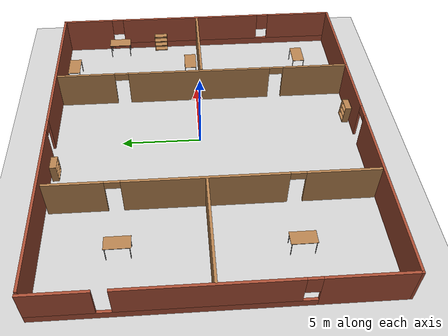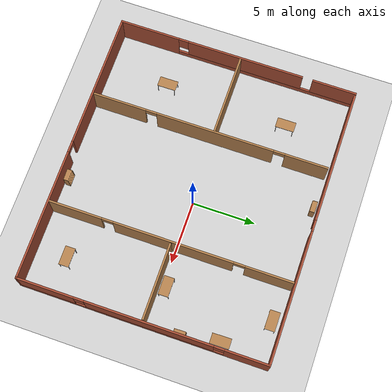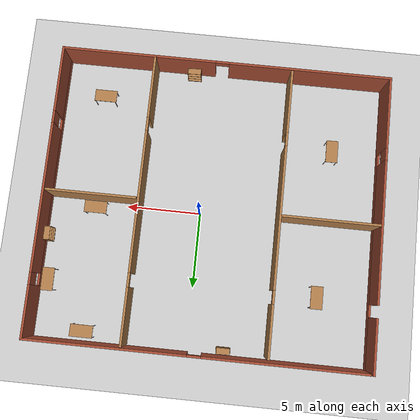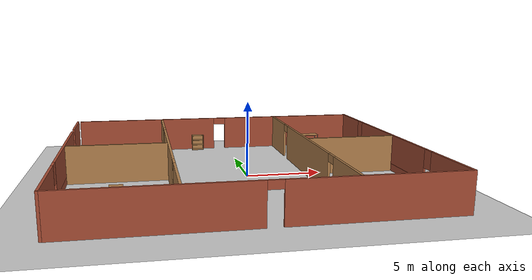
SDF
<sdf version="1.7">
 <world name="default">
  <light name="sun" type="directional">
   <pose>0 0 10 0 -0 0</pose>
   <diffuse>0.8 0.8 0.8 1</diffuse>
   <specular>0.2 0.2 0.2 1</specular>
   <attenuation>
    <range>1000</range>
    <constant>0.9</constant>
    <linear>0.01</linear>
    <quadratic>0.001</quadratic>
   </attenuation>
   <direction>-0.5 0.1 -0.9</direction>
   <spot><inner_angle>0</inner_angle><outer_angle>0</outer_angle><falloff>0</falloff></spot>
  </light>
  <model name="ground_plane">
   <static>1</static>
   <link name="link">
    <collision name="collision">
     <geometry><plane><normal>0 0 1</normal><size>100 100</size></plane></geometry>
     <surface><friction><ode><mu>100</mu><mu2>50</mu2></ode></friction></surface>
    </collision>
    <visual name="visual">
     <cast_shadows>0</cast_shadows>
     <geometry><plane><normal>0 0 1</normal><size>100 100</size></plane></geometry>
     <material>
      <script><uri>file://media/materials/scripts/gazebo.material</uri><name>Gazebo/Grey</name></script>
     </material>
    </visual>
   </link>
  </model>
  <gravity>0 0 -9.8</gravity>
  <magnetic_field>6e-06 2.3e-05 -4.2e-05</magnetic_field>
  <atmosphere type="adiabatic"/>
  <physics type="ode">
   <max_step_size>0.001</max_step_size>
   <real_time_factor>1</real_time_factor>
   <real_time_update_rate>1000</real_time_update_rate>
  </physics>
  <scene><ambient>0.4 0.4 0.4 1</ambient><background>0.7 0.7 0.7 1</background><shadows>1</shadows></scene>
  <audio><device>default</device></audio>
  <spherical_coordinates>
   <surface_model>EARTH_WGS84</surface_model>
   <latitude_deg>0</latitude_deg>
   <longitude_deg>0</longitude_deg>
   <elevation>0</elevation>
   <heading_deg>0</heading_deg>
  </spherical_coordinates>
  <model name="model">
   <pose>-0.798323 -0.381591 0 0 -0 0</pose>
   <link name="Wall_10">
    <pose>-11.05 -0 0 0 -0 1.5708</pose>
    <visual name="Wall_10_Visual_0">
     <pose>-7.30499 0 1.25 0 -0 0</pose>
     <geometry><box><size>4.89003 0.15 2.5</size></box></geometry>
     <material>
      <script><uri>file://media/materials/scripts/gazebo.material</uri><name>Gazebo/Bricks</name></script>
      <ambient>1 1 1 1</ambient>
     </material>
     <meta><layer>0</layer></meta>
    </visual>
    <collision name="Wall_10_Collision_0">
     <geometry><box><size>4.89003 0.15 2.5</size></box></geometry>
     <pose>-7.30499 0 1.25 0 -0 0</pose>
    </collision>
    <visual name="Wall_10_Visual_1">
     <pose>2.44502 0 0.25 0 -0 0</pose>
     <geometry><box><size>14.61 0.15 0.5</size></box></geometry>
     <material>
      <script><uri>file://media/materials/scripts/gazebo.material</uri><name>Gazebo/Bricks</name></script>
      <ambient>1 1 1 1</ambient>
     </material>
     <meta><layer>0</layer></meta>
    </visual>
    <collision name="Wall_10_Collision_1">
     <geometry><box><size>14.61 0.15 0.5</size></box></geometry>
     <pose>2.44502 0 0.25 0 -0 0</pose>
    </collision>
    <visual name="Wall_10_Visual_2">
     <pose>0.662234 0 1.5 0 -0 0</pose>
     <geometry><box><size>9.44441 0.15 2</size></box></geometry>
     <material>
      <script><uri>file://media/materials/scripts/gazebo.material</uri><name>Gazebo/Bricks</name></script>
      <ambient>1 1 1 1</ambient>
     </material>
     <meta><layer>0</layer></meta>
    </visual>
    <collision name="Wall_10_Collision_2">
     <geometry><box><size>9.44441 0.15 2</size></box></geometry>
     <pose>0.662234 0 1.5 0 -0 0</pose>
    </collision>
    <visual name="Wall_10_Visual_3">
     <pose>7.96722 0 1.5 0 -0 0</pose>
     <geometry><box><size>3.56556 0.15 2</size></box></geometry>
     <material>
      <script><uri>file://media/materials/scripts/gazebo.material</uri><name>Gazebo/Bricks</name></script>
      <ambient>1 1 1 1</ambient>
     </material>
     <meta><layer>0</layer></meta>
    </visual>
    <collision name="Wall_10_Collision_3">
     <geometry><box><size>3.56556 0.15 2</size></box></geometry>
     <pose>7.96722 0 1.5 0 -0 0</pose>
    </collision>
    <visual name="Wall_10_Visual_4">
     <pose>-4.45997 0 1.9 0 -0 0</pose>
     <geometry><box><size>0.8 0.15 1.2</size></box></geometry>
     <material>
      <script><uri>file://media/materials/scripts/gazebo.material</uri><name>Gazebo/Bricks</name></script>
      <ambient>1 1 1 1</ambient>
     </material>
     <meta><layer>0</layer></meta>
    </visual>
    <collision name="Wall_10_Collision_4">
     <geometry><box><size>0.8 0.15 1.2</size></box></geometry>
     <pose>-4.45997 0 1.9 0 -0 0</pose>
    </collision>
    <visual name="Wall_10_Visual_5">
     <pose>5.38444 0 1.9 0 -0 0</pose>
     <geometry><box><size>0 0.15 1.2</size></box></geometry>
     <material>
      <script><uri>file://media/materials/scripts/gazebo.material</uri><name>Gazebo/Bricks</name></script>
      <ambient>1 1 1 1</ambient>
     </material>
     <meta><layer>0</layer></meta>
    </visual>
    <collision name="Wall_10_Collision_5">
     <geometry><box><size>0 0.15 1.2</size></box></geometry>
     <pose>5.38444 0 1.9 0 -0 0</pose>
    </collision>
   </link>
   <link name="Wall_12">
    <pose>-4.45591 -0.073522 0 0 -0 -1.5708</pose>
    <visual name="Wall_12_Visual_0">
     <pose>-7.77425 0 1.25 0 -0 0</pose>
     <geometry><box><size>3.45151 0.15 2.5</size></box></geometry>
     <material>
      <script><uri>file://media/materials/scripts/gazebo.material</uri><name>Gazebo/Wood</name></script>
      <ambient>1 1 1 1</ambient>
     </material>
     <meta><layer>0</layer></meta>
    </visual>
    <collision name="Wall_12_Collision_0">
     <geometry><box><size>3.45151 0.15 2.5</size></box></geometry>
     <pose>-7.77425 0 1.25 0 -0 0</pose>
    </collision>
    <visual name="Wall_12_Visual_1">
     <pose>-0.423973 0 1.25 0 -0 0</pose>
     <geometry><box><size>9.44904 0.15 2.5</size></box></geometry>
     <material>
      <script><uri>file://media/materials/scripts/gazebo.material</uri><name>Gazebo/Wood</name></script>
      <ambient>1 1 1 1</ambient>
     </material>
     <meta><layer>0</layer></meta>
    </visual>
    <collision name="Wall_12_Collision_1">
     <geometry><box><size>9.44904 0.15 2.5</size></box></geometry>
     <pose>-0.423973 0 1.25 0 -0 0</pose>
    </collision>
    <visual name="Wall_12_Visual_2">
     <pose>7.35027 0 1.25 0 -0 0</pose>
     <geometry><box><size>4.29945 0.15 2.5</size></box></geometry>
     <material>
      <script><uri>file://media/materials/scripts/gazebo.material</uri><name>Gazebo/Wood</name></script>
      <ambient>1 1 1 1</ambient>
     </material>
     <meta><layer>0</layer></meta>
    </visual>
    <collision name="Wall_12_Collision_2">
     <geometry><box><size>4.29945 0.15 2.5</size></box></geometry>
     <pose>7.35027 0 1.25 0 -0 0</pose>
    </collision>
    <visual name="Wall_12_Visual_3">
     <pose>-5.59849 0 2.25 0 -0 0</pose>
     <geometry><box><size>0.9 0.15 0.5</size></box></geometry>
     <material>
      <script><uri>file://media/materials/scripts/gazebo.material</uri><name>Gazebo/Wood</name></script>
      <ambient>1 1 1 1</ambient>
     </material>
     <meta><layer>0</layer></meta>
    </visual>
    <collision name="Wall_12_Collision_3">
     <geometry><box><size>0.9 0.15 0.5</size></box></geometry>
     <pose>-5.59849 0 2.25 0 -0 0</pose>
    </collision>
    <visual name="Wall_12_Visual_4">
     <pose>4.75055 0 2.25 0 -0 0</pose>
     <geometry><box><size>0.9 0.15 0.5</size></box></geometry>
     <material>
      <script><uri>file://media/materials/scripts/gazebo.material</uri><name>Gazebo/Wood</name></script>
      <ambient>1 1 1 1</ambient>
     </material>
     <meta><layer>0</layer></meta>
    </visual>
    <collision name="Wall_12_Collision_4">
     <geometry><box><size>0.9 0.15 0.5</size></box></geometry>
     <pose>4.75055 0 2.25 0 -0 0</pose>
    </collision>
   </link>
   <link name="Wall_14">
    <pose>4.81327 -0.057008 0 0 -0 -1.5708</pose>
    <visual name="Wall_14_Visual_0">
     <pose>-7.74753 0 1.25 0 -0 0</pose>
     <geometry><box><size>3.75493 0.15 2.5</size></box></geometry>
     <material>
      <script><uri>file://media/materials/scripts/gazebo.material</uri><name>Gazebo/Wood</name></script>
      <ambient>1 1 1 1</ambient>
     </material>
     <meta><layer>0</layer></meta>
    </visual>
    <collision name="Wall_14_Collision_0">
     <geometry><box><size>3.75493 0.15 2.5</size></box></geometry>
     <pose>-7.74753 0 1.25 0 -0 0</pose>
    </collision>
    <visual name="Wall_14_Visual_1">
     <pose>-0.265819 0 1.25 0 -0 0</pose>
     <geometry><box><size>9.4085 0.15 2.5</size></box></geometry>
     <material>
      <script><uri>file://media/materials/scripts/gazebo.material</uri><name>Gazebo/Wood</name></script>
      <ambient>1 1 1 1</ambient>
     </material>
     <meta><layer>0</layer></meta>
    </visual>
    <collision name="Wall_14_Collision_1">
     <geometry><box><size>9.4085 0.15 2.5</size></box></geometry>
     <pose>-0.265819 0 1.25 0 -0 0</pose>
    </collision>
    <visual name="Wall_14_Visual_2">
     <pose>7.48172 0 1.25 0 -0 0</pose>
     <geometry><box><size>4.28657 0.15 2.5</size></box></geometry>
     <material>
      <script><uri>file://media/materials/scripts/gazebo.material</uri><name>Gazebo/Wood</name></script>
      <ambient>1 1 1 1</ambient>
     </material>
     <meta><layer>0</layer></meta>
    </visual>
    <collision name="Wall_14_Collision_2">
     <geometry><box><size>4.28657 0.15 2.5</size></box></geometry>
     <pose>7.48172 0 1.25 0 -0 0</pose>
    </collision>
    <visual name="Wall_14_Visual_3">
     <pose>-5.42007 0 2.25 0 -0 0</pose>
     <geometry><box><size>0.9 0.15 0.5</size></box></geometry>
     <material>
      <script><uri>file://media/materials/scripts/gazebo.material</uri><name>Gazebo/Wood</name></script>
      <ambient>1 1 1 1</ambient>
     </material>
     <meta><layer>0</layer></meta>
    </visual>
    <collision name="Wall_14_Collision_3">
     <geometry><box><size>0.9 0.15 0.5</size></box></geometry>
     <pose>-5.42007 0 2.25 0 -0 0</pose>
    </collision>
    <visual name="Wall_14_Visual_4">
     <pose>4.88843 0 2.25 0 -0 0</pose>
     <geometry><box><size>0.9 0.15 0.5</size></box></geometry>
     <material>
      <script><uri>file://media/materials/scripts/gazebo.material</uri><name>Gazebo/Wood</name></script>
      <ambient>1 1 1 1</ambient>
     </material>
     <meta><layer>0</layer></meta>
    </visual>
    <collision name="Wall_14_Collision_4">
     <geometry><box><size>0.9 0.15 0.5</size></box></geometry>
     <pose>4.88843 0 2.25 0 -0 0</pose>
    </collision>
   </link>
   <link name="Wall_16">
    <collision name="Wall_16_Collision">
     <geometry><box><size>6.5 0.15 2.5</size></box></geometry>
     <pose>0 0 1.25 0 -0 0</pose>
    </collision>
    <visual name="Wall_16_Visual">
     <pose>0 0 1.25 0 -0 0</pose>
     <geometry><box><size>6.5 0.15 2.5</size></box></geometry>
     <material>
      <script><uri>file://media/materials/scripts/gazebo.material</uri><name>Gazebo/Wood</name></script>
      <ambient>1 1 1 1</ambient>
     </material>
     <meta><layer>0</layer></meta>
    </visual>
    <pose>-7.75992 0.291635 0 0 -0 3.14159</pose>
   </link>
   <link name="Wall_18">
    <collision name="Wall_18_Collision">
     <geometry><box><size>6 0.15 2.5</size></box></geometry>
     <pose>0 0 1.25 0 -0 0</pose>
    </collision>
    <visual name="Wall_18_Visual">
     <pose>0 0 1.25 0 -0 0</pose>
     <geometry><box><size>6 0.15 2.5</size></box></geometry>
     <material>
      <script><uri>file://media/materials/scripts/gazebo.material</uri><name>Gazebo/Wood</name></script>
      <ambient>1 1 1 1</ambient>
     </material>
     <meta><layer>0</layer></meta>
    </visual>
    <pose>7.93778 0.066149 0 0 -0 0</pose>
   </link>
   <link name="Wall_6">
    <pose>0.125 9.675 0 0 -0 0</pose>
    <visual name="Wall_6_Visual_0">
     <pose>-5.68273 0 1.25 0 -0 0</pose>
     <geometry><box><size>10.6345 0.15 2.5</size></box></geometry>
     <material>
      <script><uri>file://media/materials/scripts/gazebo.material</uri><name>Gazebo/Bricks</name></script>
      <ambient>1 1 1 1</ambient>
     </material>
     <meta><layer>0</layer></meta>
    </visual>
    <collision name="Wall_6_Collision_0">
     <geometry><box><size>10.6345 0.15 2.5</size></box></geometry>
     <pose>-5.68273 0 1.25 0 -0 0</pose>
    </collision>
    <visual name="Wall_6_Visual_1">
     <pose>5.76727 0 1.25 0 -0 0</pose>
     <geometry><box><size>10.4655 0.15 2.5</size></box></geometry>
     <material>
      <script><uri>file://media/materials/scripts/gazebo.material</uri><name>Gazebo/Bricks</name></script>
      <ambient>1 1 1 1</ambient>
     </material>
     <meta><layer>0</layer></meta>
    </visual>
    <collision name="Wall_6_Collision_1">
     <geometry><box><size>10.4655 0.15 2.5</size></box></geometry>
     <pose>5.76727 0 1.25 0 -0 0</pose>
    </collision>
    <visual name="Wall_6_Visual_2">
     <pose>0.084541 0 2.25 0 -0 0</pose>
     <geometry><box><size>0.9 0.15 0.5</size></box></geometry>
     <material>
      <script><uri>file://media/materials/scripts/gazebo.material</uri><name>Gazebo/Bricks</name></script>
      <ambient>1 1 1 1</ambient>
     </material>
     <meta><layer>0</layer></meta>
    </visual>
    <collision name="Wall_6_Collision_2">
     <geometry><box><size>0.9 0.15 0.5</size></box></geometry>
     <pose>0.084541 0 2.25 0 -0 0</pose>
    </collision>
   </link>
   <link name="Wall_7">
    <pose>11.05 -0 0 0 -0 -1.5708</pose>
    <visual name="Wall_7_Visual_0">
     <pose>-8.02253 0 1.25 0 -0 0</pose>
     <geometry><box><size>3.45494 0.15 2.5</size></box></geometry>
     <material>
      <script><uri>file://media/materials/scripts/gazebo.material</uri><name>Gazebo/Bricks</name></script>
      <ambient>1 1 1 1</ambient>
     </material>
     <meta><layer>0</layer></meta>
    </visual>
    <collision name="Wall_7_Collision_0">
     <geometry><box><size>3.45494 0.15 2.5</size></box></geometry>
     <pose>-8.02253 0 1.25 0 -0 0</pose>
    </collision>
    <visual name="Wall_7_Visual_1">
     <pose>1.72747 0 0.25 0 -0 0</pose>
     <geometry><box><size>16.0451 0.15 0.5</size></box></geometry>
     <material>
      <script><uri>file://media/materials/scripts/gazebo.material</uri><name>Gazebo/Bricks</name></script>
      <ambient>1 1 1 1</ambient>
     </material>
     <meta><layer>0</layer></meta>
    </visual>
    <collision name="Wall_7_Collision_1">
     <geometry><box><size>16.0451 0.15 0.5</size></box></geometry>
     <pose>1.72747 0 0.25 0 -0 0</pose>
    </collision>
    <visual name="Wall_7_Visual_2">
     <pose>-0.535496 0 1.5 0 -0 0</pose>
     <geometry><box><size>9.91913 0.15 2</size></box></geometry>
     <material>
      <script><uri>file://media/materials/scripts/gazebo.material</uri><name>Gazebo/Bricks</name></script>
      <ambient>1 1 1 1</ambient>
     </material>
     <meta><layer>0</layer></meta>
    </visual>
    <collision name="Wall_7_Collision_2">
     <geometry><box><size>9.91913 0.15 2</size></box></geometry>
     <pose>-0.535496 0 1.5 0 -0 0</pose>
    </collision>
    <visual name="Wall_7_Visual_3">
     <pose>7.48703 0 1.5 0 -0 0</pose>
     <geometry><box><size>4.52593 0.15 2</size></box></geometry>
     <material>
      <script><uri>file://media/materials/scripts/gazebo.material</uri><name>Gazebo/Bricks</name></script>
      <ambient>1 1 1 1</ambient>
     </material>
     <meta><layer>0</layer></meta>
    </visual>
    <collision name="Wall_7_Collision_3">
     <geometry><box><size>4.52593 0.15 2</size></box></geometry>
     <pose>7.48703 0 1.5 0 -0 0</pose>
    </collision>
    <visual name="Wall_7_Visual_4">
     <pose>-5.89506 0 1.9 0 -0 0</pose>
     <geometry><box><size>0.8 0.15 1.2</size></box></geometry>
     <material>
      <script><uri>file://media/materials/scripts/gazebo.material</uri><name>Gazebo/Bricks</name></script>
      <ambient>1 1 1 1</ambient>
     </material>
     <meta><layer>0</layer></meta>
    </visual>
    <collision name="Wall_7_Collision_4">
     <geometry><box><size>0.8 0.15 1.2</size></box></geometry>
     <pose>-5.89506 0 1.9 0 -0 0</pose>
    </collision>
    <visual name="Wall_7_Visual_5">
     <pose>4.82407 0 1.9 0 -0 0</pose>
     <geometry><box><size>0.8 0.15 1.2</size></box></geometry>
     <material>
      <script><uri>file://media/materials/scripts/gazebo.material</uri><name>Gazebo/Bricks</name></script>
      <ambient>1 1 1 1</ambient>
     </material>
     <meta><layer>0</layer></meta>
    </visual>
    <collision name="Wall_7_Collision_5">
     <geometry><box><size>0.8 0.15 1.2</size></box></geometry>
     <pose>4.82407 0 1.9 0 -0 0</pose>
    </collision>
   </link>
   <link name="Wall_8">
    <pose>-0 -9.675 0 0 -0 3.14159</pose>
    <visual name="Wall_8_Visual_0">
     <pose>-5.91945 0 1.25 0 -0 0</pose>
     <geometry><box><size>10.4111 0.15 2.5</size></box></geometry>
     <material>
      <script><uri>file://media/materials/scripts/gazebo.material</uri><name>Gazebo/Bricks</name></script>
      <ambient>1 1 1 1</ambient>
     </material>
     <meta><layer>0</layer></meta>
    </visual>
    <collision name="Wall_8_Collision_0">
     <geometry><box><size>10.4111 0.15 2.5</size></box></geometry>
     <pose>-5.91945 0 1.25 0 -0 0</pose>
    </collision>
    <visual name="Wall_8_Visual_1">
     <pose>5.65555 0 1.25 0 -0 0</pose>
     <geometry><box><size>10.9389 0.15 2.5</size></box></geometry>
     <material>
      <script><uri>file://media/materials/scripts/gazebo.material</uri><name>Gazebo/Bricks</name></script>
      <ambient>1 1 1 1</ambient>
     </material>
     <meta><layer>0</layer></meta>
    </visual>
    <collision name="Wall_8_Collision_1">
     <geometry><box><size>10.9389 0.15 2.5</size></box></geometry>
     <pose>5.65555 0 1.25 0 -0 0</pose>
    </collision>
    <visual name="Wall_8_Visual_2">
     <pose>-0.263894 0 2.25 0 -0 0</pose>
     <geometry><box><size>0.9 0.15 0.5</size></box></geometry>
     <material>
      <script><uri>file://media/materials/scripts/gazebo.material</uri><name>Gazebo/Bricks</name></script>
      <ambient>1 1 1 1</ambient>
     </material>
     <meta><layer>0</layer></meta>
    </visual>
    <collision name="Wall_8_Collision_2">
     <geometry><box><size>0.9 0.15 0.5</size></box></geometry>
     <pose>-0.263894 0 2.25 0 -0 0</pose>
    </collision>
   </link>
   <static>1</static>
  </model>
  <model name="bookshelf">
   <static>1</static>
   <link name="link">
    <inertial><mass>1</mass></inertial>
    <collision name="back">
     <pose>0 0.005 0.6 0 -0 0</pose>
     <geometry><box><size>0.9 0.01 1.2</size></box></geometry>
    </collision>
    <visual name="visual1">
     <pose>0 0.005 0.6 0 -0 0</pose>
     <geometry><box><size>0.9 0.01 1.2</size></box></geometry>
     <material>
      <script><uri>file://media/materials/scripts/gazebo.material</uri><name>Gazebo/Wood</name></script>
     </material>
    </visual>
    <collision name="left_side">
     <pose>0.45 -0.195 0.6 0 -0 0</pose>
     <geometry><box><size>0.02 0.4 1.2</size></box></geometry>
    </collision>
    <visual name="visual2">
     <pose>0.45 -0.195 0.6 0 -0 0</pose>
     <geometry><box><size>0.02 0.4 1.2</size></box></geometry>
     <material>
      <script><uri>file://media/materials/scripts/gazebo.material</uri><name>Gazebo/Wood</name></script>
     </material>
    </visual>
    <collision name="right_side">
     <pose>-0.45 -0.195 0.6 0 -0 0</pose>
     <geometry><box><size>0.02 0.4 1.2</size></box></geometry>
    </collision>
    <visual name="visual3">
     <pose>-0.45 -0.195 0.6 0 -0 0</pose>
     <geometry><box><size>0.02 0.4 1.2</size></box></geometry>
     <material>
      <script><uri>file://media/materials/scripts/gazebo.material</uri><name>Gazebo/Wood</name></script>
     </material>
    </visual>
    <collision name="bottom">
     <pose>0 -0.195 0.03 0 -0 0</pose>
     <geometry><box><size>0.88 0.4 0.06</size></box></geometry>
    </collision>
    <visual name="visual4">
     <pose>0 -0.195 0.03 0 -0 0</pose>
     <geometry><box><size>0.88 0.4 0.06</size></box></geometry>
     <material>
      <script><uri>file://media/materials/scripts/gazebo.material</uri><name>Gazebo/Wood</name></script>
     </material>
    </visual>
    <collision name="top">
     <pose>0 -0.195 1.19 0 -0 0</pose>
     <geometry><box><size>0.88 0.4 0.02</size></box></geometry>
    </collision>
    <visual name="visual5">
     <pose>0 -0.195 1.19 0 -0 0</pose>
     <geometry><box><size>0.88 0.4 0.02</size></box></geometry>
     <material>
      <script><uri>file://media/materials/scripts/gazebo.material</uri><name>Gazebo/Wood</name></script>
     </material>
    </visual>
    <collision name="low_shelf">
     <pose>0 -0.195 0.43 0 -0 0</pose>
     <geometry><box><size>0.88 0.4 0.02</size></box></geometry>
    </collision>
    <visual name="visual6">
     <pose>0 -0.195 0.43 0 -0 0</pose>
     <geometry><box><size>0.88 0.4 0.02</size></box></geometry>
     <material>
      <script><uri>file://media/materials/scripts/gazebo.material</uri><name>Gazebo/Wood</name></script>
     </material>
    </visual>
    <collision name="high_shelf">
     <pose>0 -0.195 0.8 0 -0 0</pose>
     <geometry><box><size>0.88 0.4 0.02</size></box></geometry>
    </collision>
    <visual name="visual7">
     <pose>0 -0.195 0.8 0 -0 0</pose>
     <geometry><box><size>0.88 0.4 0.02</size></box></geometry>
     <material>
      <script><uri>file://media/materials/scripts/gazebo.material</uri><name>Gazebo/Wood</name></script>
     </material>
    </visual>
   </link>
   <pose>-2.42594 9.08567 0 0 -0 0</pose>
  </model>
  <model name="bookshelf_0">
   <static>1</static>
   <link name="link">
    <inertial><mass>1</mass></inertial>
    <collision name="back">
     <pose>0 0.005 0.6 0 -0 0</pose>
     <geometry><box><size>0.9 0.01 1.2</size></box></geometry>
    </collision>
    <visual name="visual1">
     <pose>0 0.005 0.6 0 -0 0</pose>
     <geometry><box><size>0.9 0.01 1.2</size></box></geometry>
     <material>
      <script><uri>file://media/materials/scripts/gazebo.material</uri><name>Gazebo/Wood</name></script>
     </material>
    </visual>
    <collision name="left_side">
     <pose>0.45 -0.195 0.6 0 -0 0</pose>
     <geometry><box><size>0.02 0.4 1.2</size></box></geometry>
    </collision>
    <visual name="visual2">
     <pose>0.45 -0.195 0.6 0 -0 0</pose>
     <geometry><box><size>0.02 0.4 1.2</size></box></geometry>
     <material>
      <script><uri>file://media/materials/scripts/gazebo.material</uri><name>Gazebo/Wood</name></script>
     </material>
    </visual>
    <collision name="right_side">
     <pose>-0.45 -0.195 0.6 0 -0 0</pose>
     <geometry><box><size>0.02 0.4 1.2</size></box></geometry>
    </collision>
    <visual name="visual3">
     <pose>-0.45 -0.195 0.6 0 -0 0</pose>
     <geometry><box><size>0.02 0.4 1.2</size></box></geometry>
     <material>
      <script><uri>file://media/materials/scripts/gazebo.material</uri><name>Gazebo/Wood</name></script>
     </material>
    </visual>
    <collision name="bottom">
     <pose>0 -0.195 0.03 0 -0 0</pose>
     <geometry><box><size>0.88 0.4 0.06</size></box></geometry>
    </collision>
    <visual name="visual4">
     <pose>0 -0.195 0.03 0 -0 0</pose>
     <geometry><box><size>0.88 0.4 0.06</size></box></geometry>
     <material>
      <script><uri>file://media/materials/scripts/gazebo.material</uri><name>Gazebo/Wood</name></script>
     </material>
    </visual>
    <collision name="top">
     <pose>0 -0.195 1.19 0 -0 0</pose>
     <geometry><box><size>0.88 0.4 0.02</size></box></geometry>
    </collision>
    <visual name="visual5">
     <pose>0 -0.195 1.19 0 -0 0</pose>
     <geometry><box><size>0.88 0.4 0.02</size></box></geometry>
     <material>
      <script><uri>file://media/materials/scripts/gazebo.material</uri><name>Gazebo/Wood</name></script>
     </material>
    </visual>
    <collision name="low_shelf">
     <pose>0 -0.195 0.43 0 -0 0</pose>
     <geometry><box><size>0.88 0.4 0.02</size></box></geometry>
    </collision>
    <visual name="visual6">
     <pose>0 -0.195 0.43 0 -0 0</pose>
     <geometry><box><size>0.88 0.4 0.02</size></box></geometry>
     <material>
      <script><uri>file://media/materials/scripts/gazebo.material</uri><name>Gazebo/Wood</name></script>
     </material>
    </visual>
    <collision name="high_shelf">
     <pose>0 -0.195 0.8 0 -0 0</pose>
     <geometry><box><size>0.88 0.4 0.02</size></box></geometry>
    </collision>
    <visual name="visual7">
     <pose>0 -0.195 0.8 0 -0 0</pose>
     <geometry><box><size>0.88 0.4 0.02</size></box></geometry>
     <material>
      <script><uri>file://media/materials/scripts/gazebo.material</uri><name>Gazebo/Wood</name></script>
     </material>
    </visual>
   </link>
   <pose>1.34559 -9.81479 0.160019 -0.053303 -0.008352 -3.12647</pose>
  </model>
  <model name="table">
   <static>1</static>
   <link name="link">
    <collision name="surface">
     <pose>0 0 1 0 -0 0</pose>
     <geometry><box><size>1.5 0.8 0.03</size></box></geometry>
     <surface><friction><ode><mu>0.6</mu><mu2>0.6</mu2></ode></friction></surface>
    </collision>
    <visual name="visual1">
     <pose>0 0 1 0 -0 0</pose>
     <geometry><box><size>1.5 0.8 0.03</size></box></geometry>
     <material>
      <script><uri>file://media/materials/scripts/gazebo.material</uri><name>Gazebo/Wood</name></script>
     </material>
    </visual>
    <collision name="front_left_leg">
     <pose>0.68 0.38 0.5 0 -0 0</pose>
     <geometry><cylinder><radius>0.02</radius><length>1</length></cylinder></geometry>
    </collision>
    <visual name="front_left_leg">
     <pose>0.68 0.38 0.5 0 -0 0</pose>
     <geometry><cylinder><radius>0.02</radius><length>1</length></cylinder></geometry>
     <material>
      <script><uri>file://media/materials/scripts/gazebo.material</uri><name>Gazebo/Grey</name></script>
     </material>
    </visual>
    <collision name="front_right_leg">
     <pose>0.68 -0.38 0.5 0 -0 0</pose>
     <geometry><cylinder><radius>0.02</radius><length>1</length></cylinder></geometry>
    </collision>
    <visual name="front_right_leg">
     <pose>0.68 -0.38 0.5 0 -0 0</pose>
     <geometry><cylinder><radius>0.02</radius><length>1</length></cylinder></geometry>
     <material>
      <script><uri>file://media/materials/scripts/gazebo.material</uri><name>Gazebo/Grey</name></script>
     </material>
    </visual>
    <collision name="back_right_leg">
     <pose>-0.68 -0.38 0.5 0 -0 0</pose>
     <geometry><cylinder><radius>0.02</radius><length>1</length></cylinder></geometry>
    </collision>
    <visual name="back_right_leg">
     <pose>-0.68 -0.38 0.5 0 -0 0</pose>
     <geometry><cylinder><radius>0.02</radius><length>1</length></cylinder></geometry>
     <material>
      <script><uri>file://media/materials/scripts/gazebo.material</uri><name>Gazebo/Grey</name></script>
     </material>
    </visual>
    <collision name="back_left_leg">
     <pose>-0.68 0.38 0.5 0 -0 0</pose>
     <geometry><cylinder><radius>0.02</radius><length>1</length></cylinder></geometry>
    </collision>
    <visual name="back_left_leg">
     <pose>-0.68 0.38 0.5 0 -0 0</pose>
     <geometry><cylinder><radius>0.02</radius><length>1</length></cylinder></geometry>
     <material>
      <script><uri>file://media/materials/scripts/gazebo.material</uri><name>Gazebo/Grey</name></script>
     </material>
    </visual>
   </link>
   <pose>9.52318 5.42212 0 0 0 -1.55734</pose>
  </model>
  <model name="table_0">
   <static>1</static>
   <link name="link">
    <collision name="surface">
     <pose>0 0 1 0 -0 0</pose>
     <geometry><box><size>1.5 0.8 0.03</size></box></geometry>
     <surface><friction><ode><mu>0.6</mu><mu2>0.6</mu2></ode></friction></surface>
    </collision>
    <visual name="visual1">
     <pose>0 0 1 0 -0 0</pose>
     <geometry><box><size>1.5 0.8 0.03</size></box></geometry>
     <material>
      <script><uri>file://media/materials/scripts/gazebo.material</uri><name>Gazebo/Wood</name></script>
     </material>
    </visual>
    <collision name="front_left_leg">
     <pose>0.68 0.38 0.5 0 -0 0</pose>
     <geometry><cylinder><radius>0.02</radius><length>1</length></cylinder></geometry>
    </collision>
    <visual name="front_left_leg">
     <pose>0.68 0.38 0.5 0 -0 0</pose>
     <geometry><cylinder><radius>0.02</radius><length>1</length></cylinder></geometry>
     <material>
      <script><uri>file://media/materials/scripts/gazebo.material</uri><name>Gazebo/Grey</name></script>
     </material>
    </visual>
    <collision name="front_right_leg">
     <pose>0.68 -0.38 0.5 0 -0 0</pose>
     <geometry><cylinder><radius>0.02</radius><length>1</length></cylinder></geometry>
    </collision>
    <visual name="front_right_leg">
     <pose>0.68 -0.38 0.5 0 -0 0</pose>
     <geometry><cylinder><radius>0.02</radius><length>1</length></cylinder></geometry>
     <material>
      <script><uri>file://media/materials/scripts/gazebo.material</uri><name>Gazebo/Grey</name></script>
     </material>
    </visual>
    <collision name="back_right_leg">
     <pose>-0.68 -0.38 0.5 0 -0 0</pose>
     <geometry><cylinder><radius>0.02</radius><length>1</length></cylinder></geometry>
    </collision>
    <visual name="back_right_leg">
     <pose>-0.68 -0.38 0.5 0 -0 0</pose>
     <geometry><cylinder><radius>0.02</radius><length>1</length></cylinder></geometry>
     <material>
      <script><uri>file://media/materials/scripts/gazebo.material</uri><name>Gazebo/Grey</name></script>
     </material>
    </visual>
    <collision name="back_left_leg">
     <pose>-0.68 0.38 0.5 0 -0 0</pose>
     <geometry><cylinder><radius>0.02</radius><length>1</length></cylinder></geometry>
    </collision>
    <visual name="back_left_leg">
     <pose>-0.68 0.38 0.5 0 -0 0</pose>
     <geometry><cylinder><radius>0.02</radius><length>1</length></cylinder></geometry>
     <material>
      <script><uri>file://media/materials/scripts/gazebo.material</uri><name>Gazebo/Grey</name></script>
     </material>
    </visual>
   </link>
   <pose>6.87735 8.54119 0 0 -0 0</pose>
  </model>
  <model name="table_1">
   <static>1</static>
   <link name="link">
    <collision name="surface">
     <pose>0 0 1 0 -0 0</pose>
     <geometry><box><size>1.5 0.8 0.03</size></box></geometry>
     <surface><friction><ode><mu>0.6</mu><mu2>0.6</mu2></ode></friction></surface>
    </collision>
    <visual name="visual1">
     <pose>0 0 1 0 -0 0</pose>
     <geometry><box><size>1.5 0.8 0.03</size></box></geometry>
     <material>
      <script><uri>file://media/materials/scripts/gazebo.material</uri><name>Gazebo/Wood</name></script>
     </material>
    </visual>
    <collision name="front_left_leg">
     <pose>0.68 0.38 0.5 0 -0 0</pose>
     <geometry><cylinder><radius>0.02</radius><length>1</length></cylinder></geometry>
    </collision>
    <visual name="front_left_leg">
     <pose>0.68 0.38 0.5 0 -0 0</pose>
     <geometry><cylinder><radius>0.02</radius><length>1</length></cylinder></geometry>
     <material>
      <script><uri>file://media/materials/scripts/gazebo.material</uri><name>Gazebo/Grey</name></script>
     </material>
    </visual>
    <collision name="front_right_leg">
     <pose>0.68 -0.38 0.5 0 -0 0</pose>
     <geometry><cylinder><radius>0.02</radius><length>1</length></cylinder></geometry>
    </collision>
    <visual name="front_right_leg">
     <pose>0.68 -0.38 0.5 0 -0 0</pose>
     <geometry><cylinder><radius>0.02</radius><length>1</length></cylinder></geometry>
     <material>
      <script><uri>file://media/materials/scripts/gazebo.material</uri><name>Gazebo/Grey</name></script>
     </material>
    </visual>
    <collision name="back_right_leg">
     <pose>-0.68 -0.38 0.5 0 -0 0</pose>
     <geometry><cylinder><radius>0.02</radius><length>1</length></cylinder></geometry>
    </collision>
    <visual name="back_right_leg">
     <pose>-0.68 -0.38 0.5 0 -0 0</pose>
     <geometry><cylinder><radius>0.02</radius><length>1</length></cylinder></geometry>
     <material>
      <script><uri>file://media/materials/scripts/gazebo.material</uri><name>Gazebo/Grey</name></script>
     </material>
    </visual>
    <collision name="back_left_leg">
     <pose>-0.68 0.38 0.5 0 -0 0</pose>
     <geometry><cylinder><radius>0.02</radius><length>1</length></cylinder></geometry>
    </collision>
    <visual name="back_left_leg">
     <pose>-0.68 0.38 0.5 0 -0 0</pose>
     <geometry><cylinder><radius>0.02</radius><length>1</length></cylinder></geometry>
     <material>
      <script><uri>file://media/materials/scripts/gazebo.material</uri><name>Gazebo/Grey</name></script>
     </material>
    </visual>
   </link>
   <pose>6.99717 0.328808 0 0 -0 0</pose>
  </model>
  <model name="bookshelf_1">
   <static>1</static>
   <link name="link">
    <inertial><mass>1</mass></inertial>
    <collision name="back">
     <pose>0 0.005 0.6 0 -0 0</pose>
     <geometry><box><size>0.9 0.01 1.2</size></box></geometry>
    </collision>
    <visual name="visual1">
     <pose>0 0.005 0.6 0 -0 0</pose>
     <geometry><box><size>0.9 0.01 1.2</size></box></geometry>
     <material>
      <script><uri>file://media/materials/scripts/gazebo.material</uri><name>Gazebo/Wood</name></script>
     </material>
    </visual>
    <collision name="left_side">
     <pose>0.45 -0.195 0.6 0 -0 0</pose>
     <geometry><box><size>0.02 0.4 1.2</size></box></geometry>
    </collision>
    <visual name="visual2">
     <pose>0.45 -0.195 0.6 0 -0 0</pose>
     <geometry><box><size>0.02 0.4 1.2</size></box></geometry>
     <material>
      <script><uri>file://media/materials/scripts/gazebo.material</uri><name>Gazebo/Wood</name></script>
     </material>
    </visual>
    <collision name="right_side">
     <pose>-0.45 -0.195 0.6 0 -0 0</pose>
     <geometry><box><size>0.02 0.4 1.2</size></box></geometry>
    </collision>
    <visual name="visual3">
     <pose>-0.45 -0.195 0.6 0 -0 0</pose>
     <geometry><box><size>0.02 0.4 1.2</size></box></geometry>
     <material>
      <script><uri>file://media/materials/scripts/gazebo.material</uri><name>Gazebo/Wood</name></script>
     </material>
    </visual>
    <collision name="bottom">
     <pose>0 -0.195 0.03 0 -0 0</pose>
     <geometry><box><size>0.88 0.4 0.06</size></box></geometry>
    </collision>
    <visual name="visual4">
     <pose>0 -0.195 0.03 0 -0 0</pose>
     <geometry><box><size>0.88 0.4 0.06</size></box></geometry>
     <material>
      <script><uri>file://media/materials/scripts/gazebo.material</uri><name>Gazebo/Wood</name></script>
     </material>
    </visual>
    <collision name="top">
     <pose>0 -0.195 1.19 0 -0 0</pose>
     <geometry><box><size>0.88 0.4 0.02</size></box></geometry>
    </collision>
    <visual name="visual5">
     <pose>0 -0.195 1.19 0 -0 0</pose>
     <geometry><box><size>0.88 0.4 0.02</size></box></geometry>
     <material>
      <script><uri>file://media/materials/scripts/gazebo.material</uri><name>Gazebo/Wood</name></script>
     </material>
    </visual>
    <collision name="low_shelf">
     <pose>0 -0.195 0.43 0 -0 0</pose>
     <geometry><box><size>0.88 0.4 0.02</size></box></geometry>
    </collision>
    <visual name="visual6">
     <pose>0 -0.195 0.43 0 -0 0</pose>
     <geometry><box><size>0.88 0.4 0.02</size></box></geometry>
     <material>
      <script><uri>file://media/materials/scripts/gazebo.material</uri><name>Gazebo/Wood</name></script>
     </material>
    </visual>
    <collision name="high_shelf">
     <pose>0 -0.195 0.8 0 -0 0</pose>
     <geometry><box><size>0.88 0.4 0.02</size></box></geometry>
    </collision>
    <visual name="visual7">
     <pose>0 -0.195 0.8 0 -0 0</pose>
     <geometry><box><size>0.88 0.4 0.02</size></box></geometry>
     <material>
      <script><uri>file://media/materials/scripts/gazebo.material</uri><name>Gazebo/Wood</name></script>
     </material>
    </visual>
   </link>
   <pose>10.1196 2.4111 0 -0.031012 -0.000584 -1.55323</pose>
  </model>
  <model name="table_2">
   <static>1</static>
   <link name="link">
    <collision name="surface">
     <pose>0 0 1 0 -0 0</pose>
     <geometry><box><size>1.5 0.8 0.03</size></box></geometry>
     <surface><friction><ode><mu>0.6</mu><mu2>0.6</mu2></ode></friction></surface>
    </collision>
    <visual name="visual1">
     <pose>0 0 1 0 -0 0</pose>
     <geometry><box><size>1.5 0.8 0.03</size></box></geometry>
     <material>
      <script><uri>file://media/materials/scripts/gazebo.material</uri><name>Gazebo/Wood</name></script>
     </material>
    </visual>
    <collision name="front_left_leg">
     <pose>0.68 0.38 0.5 0 -0 0</pose>
     <geometry><cylinder><radius>0.02</radius><length>1</length></cylinder></geometry>
    </collision>
    <visual name="front_left_leg">
     <pose>0.68 0.38 0.5 0 -0 0</pose>
     <geometry><cylinder><radius>0.02</radius><length>1</length></cylinder></geometry>
     <material>
      <script><uri>file://media/materials/scripts/gazebo.material</uri><name>Gazebo/Grey</name></script>
     </material>
    </visual>
    <collision name="front_right_leg">
     <pose>0.68 -0.38 0.5 0 -0 0</pose>
     <geometry><cylinder><radius>0.02</radius><length>1</length></cylinder></geometry>
    </collision>
    <visual name="front_right_leg">
     <pose>0.68 -0.38 0.5 0 -0 0</pose>
     <geometry><cylinder><radius>0.02</radius><length>1</length></cylinder></geometry>
     <material>
      <script><uri>file://media/materials/scripts/gazebo.material</uri><name>Gazebo/Grey</name></script>
     </material>
    </visual>
    <collision name="back_right_leg">
     <pose>-0.68 -0.38 0.5 0 -0 0</pose>
     <geometry><cylinder><radius>0.02</radius><length>1</length></cylinder></geometry>
    </collision>
    <visual name="back_right_leg">
     <pose>-0.68 -0.38 0.5 0 -0 0</pose>
     <geometry><cylinder><radius>0.02</radius><length>1</length></cylinder></geometry>
     <material>
      <script><uri>file://media/materials/scripts/gazebo.material</uri><name>Gazebo/Grey</name></script>
     </material>
    </visual>
    <collision name="back_left_leg">
     <pose>-0.68 0.38 0.5 0 -0 0</pose>
     <geometry><cylinder><radius>0.02</radius><length>1</length></cylinder></geometry>
    </collision>
    <visual name="back_left_leg">
     <pose>-0.68 0.38 0.5 0 -0 0</pose>
     <geometry><cylinder><radius>0.02</radius><length>1</length></cylinder></geometry>
     <material>
      <script><uri>file://media/materials/scripts/gazebo.material</uri><name>Gazebo/Grey</name></script>
     </material>
    </visual>
   </link>
   <pose>7.28921 -7.45278 0 0 -0 0</pose>
  </model>
  <model name="table_3">
   <static>1</static>
   <link name="link">
    <collision name="surface">
     <pose>0 0 1 0 -0 0</pose>
     <geometry><box><size>1.5 0.8 0.03</size></box></geometry>
     <surface><friction><ode><mu>0.6</mu><mu2>0.6</mu2></ode></friction></surface>
    </collision>
    <visual name="visual1">
     <pose>0 0 1 0 -0 0</pose>
     <geometry><box><size>1.5 0.8 0.03</size></box></geometry>
     <material>
      <script><uri>file://media/materials/scripts/gazebo.material</uri><name>Gazebo/Wood</name></script>
     </material>
    </visual>
    <collision name="front_left_leg">
     <pose>0.68 0.38 0.5 0 -0 0</pose>
     <geometry><cylinder><radius>0.02</radius><length>1</length></cylinder></geometry>
    </collision>
    <visual name="front_left_leg">
     <pose>0.68 0.38 0.5 0 -0 0</pose>
     <geometry><cylinder><radius>0.02</radius><length>1</length></cylinder></geometry>
     <material>
      <script><uri>file://media/materials/scripts/gazebo.material</uri><name>Gazebo/Grey</name></script>
     </material>
    </visual>
    <collision name="front_right_leg">
     <pose>0.68 -0.38 0.5 0 -0 0</pose>
     <geometry><cylinder><radius>0.02</radius><length>1</length></cylinder></geometry>
    </collision>
    <visual name="front_right_leg">
     <pose>0.68 -0.38 0.5 0 -0 0</pose>
     <geometry><cylinder><radius>0.02</radius><length>1</length></cylinder></geometry>
     <material>
      <script><uri>file://media/materials/scripts/gazebo.material</uri><name>Gazebo/Grey</name></script>
     </material>
    </visual>
    <collision name="back_right_leg">
     <pose>-0.68 -0.38 0.5 0 -0 0</pose>
     <geometry><cylinder><radius>0.02</radius><length>1</length></cylinder></geometry>
    </collision>
    <visual name="back_right_leg">
     <pose>-0.68 -0.38 0.5 0 -0 0</pose>
     <geometry><cylinder><radius>0.02</radius><length>1</length></cylinder></geometry>
     <material>
      <script><uri>file://media/materials/scripts/gazebo.material</uri><name>Gazebo/Grey</name></script>
     </material>
    </visual>
    <collision name="back_left_leg">
     <pose>-0.68 0.38 0.5 0 -0 0</pose>
     <geometry><cylinder><radius>0.02</radius><length>1</length></cylinder></geometry>
    </collision>
    <visual name="back_left_leg">
     <pose>-0.68 0.38 0.5 0 -0 0</pose>
     <geometry><cylinder><radius>0.02</radius><length>1</length></cylinder></geometry>
     <material>
      <script><uri>file://media/materials/scripts/gazebo.material</uri><name>Gazebo/Grey</name></script>
     </material>
    </visual>
   </link>
   <pose>-8.53056 -5.04897 0 0 0 -1.56512</pose>
  </model>
  <model name="table_3_clone">
   <static>1</static>
   <link name="link">
    <collision name="surface">
     <pose>0 0 1 0 -0 0</pose>
     <geometry><box><size>1.5 0.8 0.03</size></box></geometry>
     <surface><friction><ode><mu>0.6</mu><mu2>0.6</mu2></ode></friction></surface>
    </collision>
    <visual name="visual1">
     <pose>0 0 1 0 -0 0</pose>
     <geometry><box><size>1.5 0.8 0.03</size></box></geometry>
     <material>
      <script><uri>file://media/materials/scripts/gazebo.material</uri><name>Gazebo/Wood</name></script>
     </material>
    </visual>
    <collision name="front_left_leg">
     <pose>0.68 0.38 0.5 0 -0 0</pose>
     <geometry><cylinder><radius>0.02</radius><length>1</length></cylinder></geometry>
    </collision>
    <visual name="front_left_leg">
     <pose>0.68 0.38 0.5 0 -0 0</pose>
     <geometry><cylinder><radius>0.02</radius><length>1</length></cylinder></geometry>
     <material>
      <script><uri>file://media/materials/scripts/gazebo.material</uri><name>Gazebo/Grey</name></script>
     </material>
    </visual>
    <collision name="front_right_leg">
     <pose>0.68 -0.38 0.5 0 -0 0</pose>
     <geometry><cylinder><radius>0.02</radius><length>1</length></cylinder></geometry>
    </collision>
    <visual name="front_right_leg">
     <pose>0.68 -0.38 0.5 0 -0 0</pose>
     <geometry><cylinder><radius>0.02</radius><length>1</length></cylinder></geometry>
     <material>
      <script><uri>file://media/materials/scripts/gazebo.material</uri><name>Gazebo/Grey</name></script>
     </material>
    </visual>
    <collision name="back_right_leg">
     <pose>-0.68 -0.38 0.5 0 -0 0</pose>
     <geometry><cylinder><radius>0.02</radius><length>1</length></cylinder></geometry>
    </collision>
    <visual name="back_right_leg">
     <pose>-0.68 -0.38 0.5 0 -0 0</pose>
     <geometry><cylinder><radius>0.02</radius><length>1</length></cylinder></geometry>
     <material>
      <script><uri>file://media/materials/scripts/gazebo.material</uri><name>Gazebo/Grey</name></script>
     </material>
    </visual>
    <collision name="back_left_leg">
     <pose>-0.68 0.38 0.5 0 -0 0</pose>
     <geometry><cylinder><radius>0.02</radius><length>1</length></cylinder></geometry>
    </collision>
    <visual name="back_left_leg">
     <pose>-0.68 0.38 0.5 0 -0 0</pose>
     <geometry><cylinder><radius>0.02</radius><length>1</length></cylinder></geometry>
     <material>
      <script><uri>file://media/materials/scripts/gazebo.material</uri><name>Gazebo/Grey</name></script>
     </material>
    </visual>
   </link>
   <pose>-8.2151 4.88413 0 0 0 -1.56512</pose>
  </model>
  <pluginin name="welcome" filename="libhello.so"/>
 </world>
</sdf>
